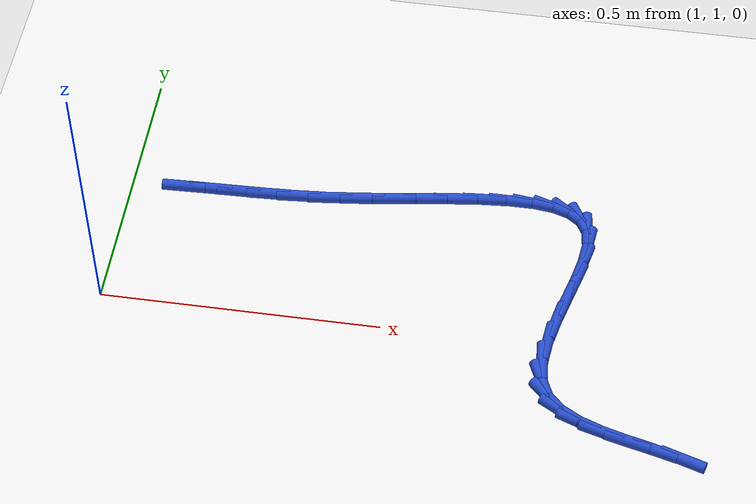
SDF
<sdf version="1.6">
 <world name="default">
  <model name="ground_plane">
   <static>1</static>
   <link name="link">
    <collision name="collision">
     <geometry><plane><normal>0 0 1</normal><size>100 100</size></plane></geometry>
     <surface><friction><ode><mu>100</mu><mu2>50</mu2></ode></friction></surface>
    </collision>
    <visual name="visual">
     <cast_shadows>0</cast_shadows>
     <geometry><plane><normal>0 0 1</normal><size>100 100</size></plane></geometry>
     <material>
      <script><uri>file://media/materials/scripts/gazebo.material</uri><name>Gazebo/WhiteGlow</name></script>
     </material>
    </visual>
   </link>
  </model>
  <model name="line">
   <link name="link_49">
    <pose>1.0969323567553437 1.259461984387818 0.01 0 1.57 0.03487184348121867</pose>
    <collision name="collision">
     <geometry><cylinder><radius>0.01</radius><length>0.08</length></cylinder></geometry>
    </collision>
    <visual name="visual">
     <material>
      <script><name>Gazebo/Blue</name><uri>file://media/materials/scripts/gazebo.material</uri></script>
     </material>
     <geometry><cylinder><radius>0.01</radius><length>0.08</length></cylinder></geometry>
    </visual>
   </link>
   <link name="link_50">
    <pose>1.1468855626127104 1.2612046512084976 0.01 0 1.57 0.02629501298949246</pose>
    <collision name="collision">
     <geometry><cylinder><radius>0.01</radius><length>0.08</length></cylinder></geometry>
    </collision>
    <visual name="visual">
     <material>
      <script><name>Gazebo/Blue</name><uri>file://media/materials/scripts/gazebo.material</uri></script>
     </material>
     <geometry><cylinder><radius>0.01</radius><length>0.08</length></cylinder></geometry>
    </visual>
   </link>
   <link name="link_51">
    <pose>1.1991095869163748 1.2625781991902303 0.01 0 1.57 0.03145754982673294</pose>
    <collision name="collision">
     <geometry><cylinder><radius>0.01</radius><length>0.08</length></cylinder></geometry>
    </collision>
    <visual name="visual">
     <material>
      <script><name>Gazebo/Blue</name><uri>file://media/materials/scripts/gazebo.material</uri></script>
     </material>
     <geometry><cylinder><radius>0.01</radius><length>0.08</length></cylinder></geometry>
    </visual>
   </link>
   <link name="link_52">
    <pose>1.2532755581266946 1.264282690207541 0.01 0 1.57 0.04900238034284818</pose>
    <collision name="collision">
     <geometry><cylinder><radius>0.01</radius><length>0.08</length></cylinder></geometry>
    </collision>
    <visual name="visual">
     <material>
      <script><name>Gazebo/Blue</name><uri>file://media/materials/scripts/gazebo.material</uri></script>
     </material>
     <geometry><cylinder><radius>0.01</radius><length>0.08</length></cylinder></geometry>
    </visual>
   </link>
   <link name="link_53">
    <pose>1.3090546047040261 1.2670181861349539 0.01 0 1.57 0.07811366855033214</pose>
    <collision name="collision">
     <geometry><cylinder><radius>0.01</radius><length>0.08</length></cylinder></geometry>
    </collision>
    <visual name="visual">
     <material>
      <script><name>Gazebo/Blue</name><uri>file://media/materials/scripts/gazebo.material</uri></script>
     </material>
     <geometry><cylinder><radius>0.01</radius><length>0.08</length></cylinder></geometry>
    </visual>
   </link>
   <link name="link_54">
    <pose>1.3661178331877208 1.271484692443205 0.01 0 1.57 0.11296170687729365</pose>
    <collision name="collision">
     <geometry><cylinder><radius>0.01</radius><length>0.08</length></cylinder></geometry>
    </collision>
    <visual name="visual">
     <material>
      <script><name>Gazebo/Blue</name><uri>file://media/materials/scripts/gazebo.material</uri></script>
     </material>
     <geometry><cylinder><radius>0.01</radius><length>0.08</length></cylinder></geometry>
    </visual>
   </link>
   <link name="link_55">
    <pose>1.4240080237495347 1.2780520247861151 0.01 0 1.57 0.1362757803306267</pose>
    <collision name="collision">
     <geometry><cylinder><radius>0.01</radius><length>0.08</length></cylinder></geometry>
    </collision>
    <visual name="visual">
     <material>
      <script><name>Gazebo/Blue</name><uri>file://media/materials/scripts/gazebo.material</uri></script>
     </material>
     <geometry><cylinder><radius>0.01</radius><length>0.08</length></cylinder></geometry>
    </visual>
   </link>
   <link name="link_56">
    <pose>1.4818373021110742 1.2859819045363818 0.01 0 1.57 0.1455029048446189</pose>
    <collision name="collision">
     <geometry><cylinder><radius>0.01</radius><length>0.08</length></cylinder></geometry>
    </collision>
    <visual name="visual">
     <material>
      <script><name>Gazebo/Blue</name><uri>file://media/materials/scripts/gazebo.material</uri></script>
     </material>
     <geometry><cylinder><radius>0.01</radius><length>0.08</length></cylinder></geometry>
    </visual>
   </link>
   <link name="link_57">
    <pose>1.538627554511207 1.2943038626069878 0.01 0 1.57 0.14044458529298665</pose>
    <collision name="collision">
     <geometry><cylinder><radius>0.01</radius><length>0.08</length></cylinder></geometry>
    </collision>
    <visual name="visual">
     <material>
      <script><name>Gazebo/Blue</name><uri>file://media/materials/scripts/gazebo.material</uri></script>
     </material>
     <geometry><cylinder><radius>0.01</radius><length>0.08</length></cylinder></geometry>
    </visual>
   </link>
   <link name="link_58">
    <pose>1.5934006671887977 1.3020474299109164 0.01 0 1.57 0.11907410465653506</pose>
    <collision name="collision">
     <geometry><cylinder><radius>0.01</radius><length>0.08</length></cylinder></geometry>
    </collision>
    <visual name="visual">
     <material>
      <script><name>Gazebo/Blue</name><uri>file://media/materials/scripts/gazebo.material</uri></script>
     </material>
     <geometry><cylinder><radius>0.01</radius><length>0.08</length></cylinder></geometry>
    </visual>
   </link>
   <link name="link_59">
    <pose>1.6451785263827112 1.3082421373611495 0.01 0 1.57 0.0767325855621983</pose>
    <collision name="collision">
     <geometry><cylinder><radius>0.01</radius><length>0.08</length></cylinder></geometry>
    </collision>
    <visual name="visual">
     <material>
      <script><name>Gazebo/Blue</name><uri>file://media/materials/scripts/gazebo.material</uri></script>
     </material>
     <geometry><cylinder><radius>0.01</radius><length>0.08</length></cylinder></geometry>
    </visual>
   </link>
   <link name="link_60">
    <pose>1.6929830183318149 1.3119175158706708 0.01 0 1.57 0.004330601691064253</pose>
    <collision name="collision">
     <geometry><cylinder><radius>0.01</radius><length>0.08</length></cylinder></geometry>
    </collision>
    <visual name="visual">
     <material>
      <script><name>Gazebo/Blue</name><uri>file://media/materials/scripts/gazebo.material</uri></script>
     </material>
     <geometry><cylinder><radius>0.01</radius><length>0.08</length></cylinder></geometry>
    </visual>
   </link>
   <link name="link_61">
    <pose>1.7358360292749726 1.3121030963524623 0.01 0 1.57 -0.11525858665743724</pose>
    <collision name="collision">
     <geometry><cylinder><radius>0.01</radius><length>0.08</length></cylinder></geometry>
    </collision>
    <visual name="visual">
     <material>
      <script><name>Gazebo/Blue</name><uri>file://media/materials/scripts/gazebo.material</uri></script>
     </material>
     <geometry><cylinder><radius>0.01</radius><length>0.08</length></cylinder></geometry>
    </visual>
   </link>
   <link name="link_62">
    <pose>1.7727594454510516 1.3078284097195072 0.01 0 1.57 -0.31273409508932754</pose>
    <collision name="collision">
     <geometry><cylinder><radius>0.01</radius><length>0.08</length></cylinder></geometry>
    </collision>
    <visual name="visual">
     <material>
      <script><name>Gazebo/Blue</name><uri>file://media/materials/scripts/gazebo.material</uri></script>
     </material>
     <geometry><cylinder><radius>0.01</radius><length>0.08</length></cylinder></geometry>
    </visual>
   </link>
   <link name="link_63">
    <pose>1.8027751530989158 1.2981229868847879 0.01 0 1.57 -0.6291557627518425</pose>
    <collision name="collision">
     <geometry><cylinder><radius>0.01</radius><length>0.08</length></cylinder></geometry>
    </collision>
    <visual name="visual">
     <material>
      <script><name>Gazebo/Blue</name><uri>file://media/materials/scripts/gazebo.material</uri></script>
     </material>
     <geometry><cylinder><radius>0.01</radius><length>0.08</length></cylinder></geometry>
    </visual>
   </link>
   <link name="link_64">
    <pose>1.8249050384574321 1.2820163587612874 0.01 0 1.57 -1.056486914539952</pose>
    <collision name="collision">
     <geometry><cylinder><radius>0.01</radius><length>0.08</length></cylinder></geometry>
    </collision>
    <visual name="visual">
     <material>
      <script><name>Gazebo/Blue</name><uri>file://media/materials/scripts/gazebo.material</uri></script>
     </material>
     <geometry><cylinder><radius>0.01</radius><length>0.08</length></cylinder></geometry>
    </visual>
   </link>
   <link name="link_65">
    <pose>1.838170987765466 1.2585380562619883 0.01 0 1.57 -1.4542742743652997</pose>
    <collision name="collision">
     <geometry><cylinder><radius>0.01</radius><length>0.08</length></cylinder></geometry>
    </collision>
    <visual name="visual">
     <material>
      <script><name>Gazebo/Blue</name><uri>file://media/materials/scripts/gazebo.material</uri></script>
     </material>
     <geometry><cylinder><radius>0.01</radius><length>0.08</length></cylinder></geometry>
    </visual>
   </link>
   <link name="link_66">
    <pose>1.8418692773525025 1.2269428634613 0.01 0 1.57 1.4592407138584311</pose>
    <collision name="collision">
     <geometry><cylinder><radius>0.01</radius><length>0.08</length></cylinder></geometry>
    </collision>
    <visual name="visual">
     <material>
      <script><name>Gazebo/Blue</name><uri>file://media/materials/scripts/gazebo.material</uri></script>
     </material>
     <geometry><cylinder><radius>0.01</radius><length>0.08</length></cylinder></geometry>
    </visual>
   </link>
   <link name="link_67">
    <pose>1.8375439262384095 1.1883307883115641 0.01 0 1.57 1.351908942411549</pose>
    <collision name="collision">
     <geometry><cylinder><radius>0.01</radius><length>0.08</length></cylinder></geometry>
    </collision>
    <visual name="visual">
     <material>
      <script><name>Gazebo/Blue</name><uri>file://media/materials/scripts/gazebo.material</uri></script>
     </material>
     <geometry><cylinder><radius>0.01</radius><length>0.08</length></cylinder></geometry>
    </visual>
   </link>
   <link name="link_68">
    <pose>1.8278393450538029 1.1447051756479083 0.01 0 1.57 1.3102478265604918</pose>
    <collision name="collision">
     <geometry><cylinder><radius>0.01</radius><length>0.08</length></cylinder></geometry>
    </collision>
    <visual name="visual">
     <material>
      <script><name>Gazebo/Blue</name><uri>file://media/materials/scripts/gazebo.material</uri></script>
     </material>
     <geometry><cylinder><radius>0.01</radius><length>0.08</length></cylinder></geometry>
    </visual>
   </link>
   <link name="link_69">
    <pose>1.8154074691554383 1.098075547526904 0.01 0 1.57 1.3139720334394576</pose>
    <collision name="collision">
     <geometry><cylinder><radius>0.01</radius><length>0.08</length></cylinder></geometry>
    </collision>
    <visual name="visual">
     <material>
      <script><name>Gazebo/Blue</name><uri>file://media/materials/scripts/gazebo.material</uri></script>
     </material>
     <geometry><cylinder><radius>0.01</radius><length>0.08</length></cylinder></geometry>
    </visual>
   </link>
   <link name="link_70">
    <pose>1.8029002339000713 1.0504514260051228 0.01 0 1.57 1.3608726053379567</pose>
    <collision name="collision">
     <geometry><cylinder><radius>0.01</radius><length>0.08</length></cylinder></geometry>
    </collision>
    <visual name="visual">
     <material>
      <script><name>Gazebo/Blue</name><uri>file://media/materials/scripts/gazebo.material</uri></script>
     </material>
     <geometry><cylinder><radius>0.01</radius><length>0.08</length></cylinder></geometry>
    </visual>
   </link>
   <link name="link_71">
    <pose>1.7929695746444572 1.003842333139135 0.01 0 1.57 1.4633263212823258</pose>
    <collision name="collision">
     <geometry><cylinder><radius>0.01</radius><length>0.08</length></cylinder></geometry>
    </collision>
    <visual name="visual">
     <material>
      <script><name>Gazebo/Blue</name><uri>file://media/materials/scripts/gazebo.material</uri></script>
     </material>
     <geometry><cylinder><radius>0.01</radius><length>0.08</length></cylinder></geometry>
    </visual>
   </link>
   <link name="link_72">
    <pose>1.7882674267453516 0.9602577909855129 0.01 0 1.57 -1.4885372281886198</pose>
    <collision name="collision">
     <geometry><cylinder><radius>0.01</radius><length>0.08</length></cylinder></geometry>
    </collision>
    <visual name="visual">
     <material>
      <script><name>Gazebo/Blue</name><uri>file://media/materials/scripts/gazebo.material</uri></script>
     </material>
     <geometry><cylinder><radius>0.01</radius><length>0.08</length></cylinder></geometry>
    </visual>
   </link>
   <link name="link_73">
    <pose>1.7914457255595095 0.9217073216008274 0.01 0 1.57 -1.1639242244328496</pose>
    <collision name="collision">
     <geometry><cylinder><radius>0.01</radius><length>0.08</length></cylinder></geometry>
    </collision>
    <visual name="visual">
     <material>
      <script><name>Gazebo/Blue</name><uri>file://media/materials/scripts/gazebo.material</uri></script>
     </material>
     <geometry><cylinder><radius>0.01</radius><length>0.08</length></cylinder></geometry>
    </visual>
   </link>
   <link name="link_74">
    <pose>1.8050556101277941 0.8901238154656408 0.01 0 1.57 -0.7873997077886349</pose>
    <collision name="collision">
     <geometry><cylinder><radius>0.01</radius><length>0.08</length></cylinder></geometry>
    </collision>
    <visual name="visual">
     <material>
      <script><name>Gazebo/Blue</name><uri>file://media/materials/scripts/gazebo.material</uri></script>
     </material>
     <geometry><cylinder><radius>0.01</radius><length>0.08</length></cylinder></geometry>
    </visual>
   </link>
   <link name="link_75">
    <pose>1.8293721411100525 0.8657097478969238 0.01 0 1.57 -0.516217603077784</pose>
    <collision name="collision">
     <geometry><cylinder><radius>0.01</radius><length>0.08</length></cylinder></geometry>
    </collision>
    <visual name="visual">
     <material>
      <script><name>Gazebo/Blue</name><uri>file://media/materials/scripts/gazebo.material</uri></script>
     </material>
     <geometry><cylinder><radius>0.01</radius><length>0.08</length></cylinder></geometry>
    </visual>
   </link>
   <link name="link_76">
    <pose>1.8624175213368517 0.8469548327436205 0.01 0 1.57 -0.35415936212429544</pose>
    <collision name="collision">
     <geometry><cylinder><radius>0.01</radius><length>0.08</length></cylinder></geometry>
    </collision>
    <visual name="visual">
     <material>
      <script><name>Gazebo/Blue</name><uri>file://media/materials/scripts/gazebo.material</uri></script>
     </material>
     <geometry><cylinder><radius>0.01</radius><length>0.08</length></cylinder></geometry>
    </visual>
   </link>
   <link name="link_77">
    <pose>1.9021178015862952 0.8322756831341642 0.01 0 1.57 -0.2685642349403821</pose>
    <collision name="collision">
     <geometry><cylinder><radius>0.01</radius><length>0.08</length></cylinder></geometry>
    </collision>
    <visual name="visual">
     <material>
      <script><name>Gazebo/Blue</name><uri>file://media/materials/scripts/gazebo.material</uri></script>
     </material>
     <geometry><cylinder><radius>0.01</radius><length>0.08</length></cylinder></geometry>
    </visual>
   </link>
   <link name="link_78">
    <pose>1.946399032636487 0.8200889121969883 0.01 0 1.57 -0.2365269665464711</pose>
    <collision name="collision">
     <geometry><cylinder><radius>0.01</radius><length>0.08</length></cylinder></geometry>
    </collision>
    <visual name="visual">
     <material>
      <script><name>Gazebo/Blue</name><uri>file://media/materials/scripts/gazebo.material</uri></script>
     </material>
     <geometry><cylinder><radius>0.01</radius><length>0.08</length></cylinder></geometry>
    </visual>
   </link>
   <link name="link_79">
    <pose>1.9931872652655314 0.8088111330605265 0.01 0 1.57 -0.24790346906114116</pose>
    <collision name="collision">
     <geometry><cylinder><radius>0.01</radius><length>0.08</length></cylinder></geometry>
    </collision>
    <visual name="visual">
     <material>
      <script><name>Gazebo/Blue</name><uri>file://media/materials/scripts/gazebo.material</uri></script>
     </material>
     <geometry><cylinder><radius>0.01</radius><length>0.08</length></cylinder></geometry>
    </visual>
   </link>
   <link name="link_80">
    <pose>2.0404085502515312 0.7968589588532121 0.01 0 1.57 -0.30220685047657836</pose>
    <collision name="collision">
     <geometry><cylinder><radius>0.01</radius><length>0.08</length></cylinder></geometry>
    </collision>
    <visual name="visual">
     <material>
      <script><name>Gazebo/Blue</name><uri>file://media/materials/scripts/gazebo.material</uri></script>
     </material>
     <geometry><cylinder><radius>0.01</radius><length>0.08</length></cylinder></geometry>
    </visual>
   </link>
  </model>
 </world>
</sdf>
